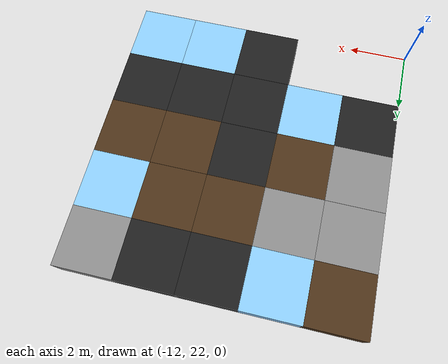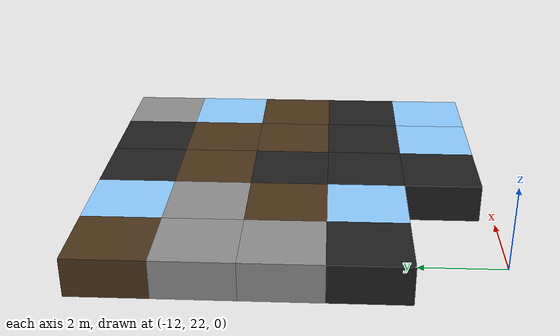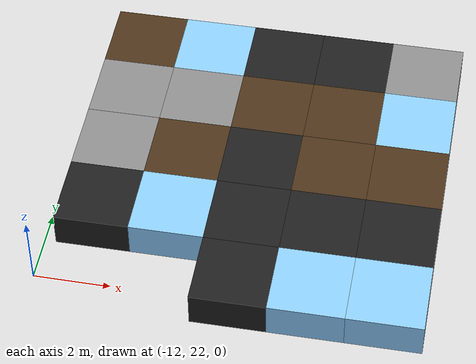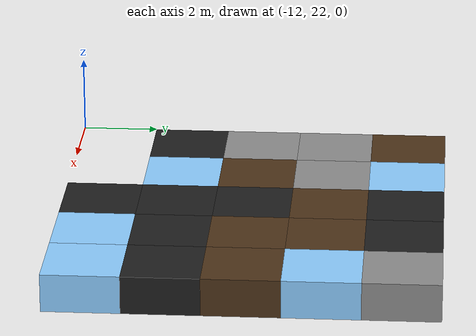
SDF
<sdf version="1.5">
 <world name="squares_example">
  <model name="tile_12_27">
   <static>true</static>
   <pose>-7.000 23.000 -0.500 0 0 0</pose>
   <link name="link">
    <collision name="col">
     <geometry><box><size>2.0 2.0 1.0</size></box></geometry>
     <surface>
      <friction>
       <ode><mu>0.4</mu><mu2>0.15</mu2><fdir1>1 0 0</fdir1><slip1>0.0</slip1><slip2>0.0</slip2></ode>
       <torsional>
        <coefficient>0.03</coefficient>
        <use_patch_radius>false</use_patch_radius>
        <surface_radius>0.12</surface_radius>
        <ode><slip>0.0</slip></ode>
       </torsional>
      </friction>
      <bounce><restitution_coefficient>0.0</restitution_coefficient><threshold>0.1</threshold></bounce>
      <contact>
       <ode><kp>1000000000.0</kp><kd>1000000.0</kd><max_vel>0.01</max_vel><min_depth>0.0</min_depth></ode>
      </contact>
     </surface>
    </collision>
    <visual name="visual">
     <geometry><box><size>2.0 2.0 1.0</size></box></geometry>
     <material>
      <diffuse>0.12 0.12 0.12 1</diffuse>
      <ambient>0 0 0 0</ambient>
      <specular>0 0 0 1</specular>
      <emissive>0 0 0 1</emissive>
     </material>
    </visual>
   </link>
  </model>
  <model name="tile_13_27">
   <static>true</static>
   <pose>-5.000 23.000 -0.500 0 0 0</pose>
   <link name="link">
    <collision name="col">
     <geometry><box><size>2.0 2.0 1.0</size></box></geometry>
     <surface>
      <friction>
       <ode><mu>0.03</mu><mu2>0.02</mu2><fdir1>1 0 0</fdir1><slip1>0.03</slip1><slip2>0.03</slip2></ode>
       <torsional>
        <coefficient>0.005</coefficient>
        <use_patch_radius>false</use_patch_radius>
        <surface_radius>0.12</surface_radius>
        <ode><slip>0.01</slip></ode>
       </torsional>
      </friction>
      <bounce><restitution_coefficient>0.0</restitution_coefficient><threshold>0.1</threshold></bounce>
      <contact>
       <ode><kp>10000000.0</kp><kd>1000.0</kd><max_vel>0.01</max_vel><min_depth>0.0</min_depth></ode>
      </contact>
     </surface>
    </collision>
    <visual name="visual">
     <geometry><box><size>2.0 2.0 1.0</size></box></geometry>
     <material>
      <diffuse>0.55 0.80 1.00 1</diffuse>
      <ambient>0 0 0 0</ambient>
      <specular>0 0 0 1</specular>
      <emissive>0 0 0 1</emissive>
     </material>
    </visual>
   </link>
  </model>
  <model name="tile_14_27">
   <static>true</static>
   <pose>-3.000 23.000 -0.500 0 0 0</pose>
   <link name="link">
    <collision name="col">
     <geometry><box><size>2.0 2.0 1.0</size></box></geometry>
     <surface>
      <friction>
       <ode><mu>0.03</mu><mu2>0.02</mu2><fdir1>1 0 0</fdir1><slip1>0.03</slip1><slip2>0.03</slip2></ode>
       <torsional>
        <coefficient>0.005</coefficient>
        <use_patch_radius>false</use_patch_radius>
        <surface_radius>0.12</surface_radius>
        <ode><slip>0.01</slip></ode>
       </torsional>
      </friction>
      <bounce><restitution_coefficient>0.0</restitution_coefficient><threshold>0.1</threshold></bounce>
      <contact>
       <ode><kp>10000000.0</kp><kd>1000.0</kd><max_vel>0.01</max_vel><min_depth>0.0</min_depth></ode>
      </contact>
     </surface>
    </collision>
    <visual name="visual">
     <geometry><box><size>2.0 2.0 1.0</size></box></geometry>
     <material>
      <diffuse>0.55 0.80 1.00 1</diffuse>
      <ambient>0 0 0 0</ambient>
      <specular>0 0 0 1</specular>
      <emissive>0 0 0 1</emissive>
     </material>
    </visual>
   </link>
  </model>
  <model name="tile_10_28">
   <static>true</static>
   <pose>-11.000 25.000 -0.500 0 0 0</pose>
   <link name="link">
    <collision name="col">
     <geometry><box><size>2.0 2.0 1.0</size></box></geometry>
     <surface>
      <friction>
       <ode><mu>0.4</mu><mu2>0.15</mu2><fdir1>1 0 0</fdir1><slip1>0.0</slip1><slip2>0.0</slip2></ode>
       <torsional>
        <coefficient>0.03</coefficient>
        <use_patch_radius>false</use_patch_radius>
        <surface_radius>0.12</surface_radius>
        <ode><slip>0.0</slip></ode>
       </torsional>
      </friction>
      <bounce><restitution_coefficient>0.0</restitution_coefficient><threshold>0.1</threshold></bounce>
      <contact>
       <ode><kp>1000000000.0</kp><kd>1000000.0</kd><max_vel>0.01</max_vel><min_depth>0.0</min_depth></ode>
      </contact>
     </surface>
    </collision>
    <visual name="visual">
     <geometry><box><size>2.0 2.0 1.0</size></box></geometry>
     <material>
      <diffuse>0.12 0.12 0.12 1</diffuse>
      <ambient>0 0 0 0</ambient>
      <specular>0 0 0 1</specular>
      <emissive>0 0 0 1</emissive>
     </material>
    </visual>
   </link>
  </model>
  <model name="tile_11_28">
   <static>true</static>
   <pose>-9.000 25.000 -0.500 0 0 0</pose>
   <link name="link">
    <collision name="col">
     <geometry><box><size>2.0 2.0 1.0</size></box></geometry>
     <surface>
      <friction>
       <ode><mu>0.03</mu><mu2>0.02</mu2><fdir1>1 0 0</fdir1><slip1>0.03</slip1><slip2>0.03</slip2></ode>
       <torsional>
        <coefficient>0.005</coefficient>
        <use_patch_radius>false</use_patch_radius>
        <surface_radius>0.12</surface_radius>
        <ode><slip>0.01</slip></ode>
       </torsional>
      </friction>
      <bounce><restitution_coefficient>0.0</restitution_coefficient><threshold>0.1</threshold></bounce>
      <contact>
       <ode><kp>10000000.0</kp><kd>1000.0</kd><max_vel>0.01</max_vel><min_depth>0.0</min_depth></ode>
      </contact>
     </surface>
    </collision>
    <visual name="visual">
     <geometry><box><size>2.0 2.0 1.0</size></box></geometry>
     <material>
      <diffuse>0.55 0.80 1.00 1</diffuse>
      <ambient>0 0 0 0</ambient>
      <specular>0 0 0 1</specular>
      <emissive>0 0 0 1</emissive>
     </material>
    </visual>
   </link>
  </model>
  <model name="tile_12_28">
   <static>true</static>
   <pose>-7.000 25.000 -0.500 0 0 0</pose>
   <link name="link">
    <collision name="col">
     <geometry><box><size>2.0 2.0 1.0</size></box></geometry>
     <surface>
      <friction>
       <ode><mu>0.4</mu><mu2>0.15</mu2><fdir1>1 0 0</fdir1><slip1>0.0</slip1><slip2>0.0</slip2></ode>
       <torsional>
        <coefficient>0.03</coefficient>
        <use_patch_radius>false</use_patch_radius>
        <surface_radius>0.12</surface_radius>
        <ode><slip>0.0</slip></ode>
       </torsional>
      </friction>
      <bounce><restitution_coefficient>0.0</restitution_coefficient><threshold>0.1</threshold></bounce>
      <contact>
       <ode><kp>1000000000.0</kp><kd>1000000.0</kd><max_vel>0.01</max_vel><min_depth>0.0</min_depth></ode>
      </contact>
     </surface>
    </collision>
    <visual name="visual">
     <geometry><box><size>2.0 2.0 1.0</size></box></geometry>
     <material>
      <diffuse>0.12 0.12 0.12 1</diffuse>
      <ambient>0 0 0 0</ambient>
      <specular>0 0 0 1</specular>
      <emissive>0 0 0 1</emissive>
     </material>
    </visual>
   </link>
  </model>
  <model name="tile_13_28">
   <static>true</static>
   <pose>-5.000 25.000 -0.500 0 0 0</pose>
   <link name="link">
    <collision name="col">
     <geometry><box><size>2.0 2.0 1.0</size></box></geometry>
     <surface>
      <friction>
       <ode><mu>0.4</mu><mu2>0.15</mu2><fdir1>1 0 0</fdir1><slip1>0.0</slip1><slip2>0.0</slip2></ode>
       <torsional>
        <coefficient>0.03</coefficient>
        <use_patch_radius>false</use_patch_radius>
        <surface_radius>0.12</surface_radius>
        <ode><slip>0.0</slip></ode>
       </torsional>
      </friction>
      <bounce><restitution_coefficient>0.0</restitution_coefficient><threshold>0.1</threshold></bounce>
      <contact>
       <ode><kp>1000000000.0</kp><kd>1000000.0</kd><max_vel>0.01</max_vel><min_depth>0.0</min_depth></ode>
      </contact>
     </surface>
    </collision>
    <visual name="visual">
     <geometry><box><size>2.0 2.0 1.0</size></box></geometry>
     <material>
      <diffuse>0.12 0.12 0.12 1</diffuse>
      <ambient>0 0 0 0</ambient>
      <specular>0 0 0 1</specular>
      <emissive>0 0 0 1</emissive>
     </material>
    </visual>
   </link>
  </model>
  <model name="tile_14_28">
   <static>true</static>
   <pose>-3.000 25.000 -0.500 0 0 0</pose>
   <link name="link">
    <collision name="col">
     <geometry><box><size>2.0 2.0 1.0</size></box></geometry>
     <surface>
      <friction>
       <ode><mu>0.4</mu><mu2>0.15</mu2><fdir1>1 0 0</fdir1><slip1>0.0</slip1><slip2>0.0</slip2></ode>
       <torsional>
        <coefficient>0.03</coefficient>
        <use_patch_radius>false</use_patch_radius>
        <surface_radius>0.12</surface_radius>
        <ode><slip>0.0</slip></ode>
       </torsional>
      </friction>
      <bounce><restitution_coefficient>0.0</restitution_coefficient><threshold>0.1</threshold></bounce>
      <contact>
       <ode><kp>1000000000.0</kp><kd>1000000.0</kd><max_vel>0.01</max_vel><min_depth>0.0</min_depth></ode>
      </contact>
     </surface>
    </collision>
    <visual name="visual">
     <geometry><box><size>2.0 2.0 1.0</size></box></geometry>
     <material>
      <diffuse>0.12 0.12 0.12 1</diffuse>
      <ambient>0 0 0 0</ambient>
      <specular>0 0 0 1</specular>
      <emissive>0 0 0 1</emissive>
     </material>
    </visual>
   </link>
  </model>
  <model name="tile_10_29">
   <static>true</static>
   <pose>-11.000 27.000 -0.500 0 0 0</pose>
   <link name="link">
    <collision name="col">
     <geometry><box><size>2.0 2.0 1.0</size></box></geometry>
     <surface>
      <friction>
       <ode><mu>0.8</mu><mu2>0.3</mu2><fdir1>1 0 0</fdir1><slip1>0.0</slip1><slip2>0.0</slip2></ode>
       <torsional>
        <coefficient>0.03</coefficient>
        <use_patch_radius>false</use_patch_radius>
        <surface_radius>0.12</surface_radius>
        <ode><slip>0.0</slip></ode>
       </torsional>
      </friction>
      <bounce><restitution_coefficient>0.0</restitution_coefficient><threshold>0.1</threshold></bounce>
      <contact>
       <ode><kp>10000000000.0</kp><kd>10000000.0</kd><max_vel>0.01</max_vel><min_depth>0.0</min_depth></ode>
      </contact>
     </surface>
    </collision>
    <visual name="visual">
     <geometry><box><size>2.0 2.0 1.0</size></box></geometry>
     <material>
      <diffuse>0.55 0.55 0.55 1</diffuse>
      <ambient>0 0 0 0</ambient>
      <specular>0 0 0 1</specular>
      <emissive>0 0 0 1</emissive>
     </material>
    </visual>
   </link>
  </model>
  <model name="tile_11_29">
   <static>true</static>
   <pose>-9.000 27.000 -0.500 0 0 0</pose>
   <link name="link">
    <collision name="col">
     <geometry><box><size>2.0 2.0 1.0</size></box></geometry>
     <surface>
      <friction>
       <ode><mu>0.6</mu><mu2>0.4</mu2><fdir1>1 0 0</fdir1><slip1>0.08</slip1><slip2>0.08</slip2></ode>
       <torsional>
        <coefficient>0.03</coefficient>
        <use_patch_radius>false</use_patch_radius>
        <surface_radius>0.12</surface_radius>
        <ode><slip>0.0</slip></ode>
       </torsional>
      </friction>
      <bounce><restitution_coefficient>0.0</restitution_coefficient><threshold>0.1</threshold></bounce>
      <contact>
       <ode><kp>1000000.0</kp><kd>10000.0</kd><max_vel>0.01</max_vel><min_depth>0.0</min_depth></ode>
      </contact>
     </surface>
    </collision>
    <visual name="visual">
     <geometry><box><size>2.0 2.0 1.0</size></box></geometry>
     <material>
      <diffuse>0.30 0.20 0.10 1</diffuse>
      <ambient>0 0 0 0</ambient>
      <specular>0 0 0 1</specular>
      <emissive>0 0 0 1</emissive>
     </material>
    </visual>
   </link>
  </model>
  <model name="tile_12_29">
   <static>true</static>
   <pose>-7.000 27.000 -0.500 0 0 0</pose>
   <link name="link">
    <collision name="col">
     <geometry><box><size>2.0 2.0 1.0</size></box></geometry>
     <surface>
      <friction>
       <ode><mu>0.4</mu><mu2>0.15</mu2><fdir1>1 0 0</fdir1><slip1>0.0</slip1><slip2>0.0</slip2></ode>
       <torsional>
        <coefficient>0.03</coefficient>
        <use_patch_radius>false</use_patch_radius>
        <surface_radius>0.12</surface_radius>
        <ode><slip>0.0</slip></ode>
       </torsional>
      </friction>
      <bounce><restitution_coefficient>0.0</restitution_coefficient><threshold>0.1</threshold></bounce>
      <contact>
       <ode><kp>1000000000.0</kp><kd>1000000.0</kd><max_vel>0.01</max_vel><min_depth>0.0</min_depth></ode>
      </contact>
     </surface>
    </collision>
    <visual name="visual">
     <geometry><box><size>2.0 2.0 1.0</size></box></geometry>
     <material>
      <diffuse>0.12 0.12 0.12 1</diffuse>
      <ambient>0 0 0 0</ambient>
      <specular>0 0 0 1</specular>
      <emissive>0 0 0 1</emissive>
     </material>
    </visual>
   </link>
  </model>
  <model name="tile_13_29">
   <static>true</static>
   <pose>-5.000 27.000 -0.500 0 0 0</pose>
   <link name="link">
    <collision name="col">
     <geometry><box><size>2.0 2.0 1.0</size></box></geometry>
     <surface>
      <friction>
       <ode><mu>0.6</mu><mu2>0.4</mu2><fdir1>1 0 0</fdir1><slip1>0.08</slip1><slip2>0.08</slip2></ode>
       <torsional>
        <coefficient>0.03</coefficient>
        <use_patch_radius>false</use_patch_radius>
        <surface_radius>0.12</surface_radius>
        <ode><slip>0.0</slip></ode>
       </torsional>
      </friction>
      <bounce><restitution_coefficient>0.0</restitution_coefficient><threshold>0.1</threshold></bounce>
      <contact>
       <ode><kp>1000000.0</kp><kd>10000.0</kd><max_vel>0.01</max_vel><min_depth>0.0</min_depth></ode>
      </contact>
     </surface>
    </collision>
    <visual name="visual">
     <geometry><box><size>2.0 2.0 1.0</size></box></geometry>
     <material>
      <diffuse>0.30 0.20 0.10 1</diffuse>
      <ambient>0 0 0 0</ambient>
      <specular>0 0 0 1</specular>
      <emissive>0 0 0 1</emissive>
     </material>
    </visual>
   </link>
  </model>
  <model name="tile_14_29">
   <static>true</static>
   <pose>-3.000 27.000 -0.500 0 0 0</pose>
   <link name="link">
    <collision name="col">
     <geometry><box><size>2.0 2.0 1.0</size></box></geometry>
     <surface>
      <friction>
       <ode><mu>0.6</mu><mu2>0.4</mu2><fdir1>1 0 0</fdir1><slip1>0.08</slip1><slip2>0.08</slip2></ode>
       <torsional>
        <coefficient>0.03</coefficient>
        <use_patch_radius>false</use_patch_radius>
        <surface_radius>0.12</surface_radius>
        <ode><slip>0.0</slip></ode>
       </torsional>
      </friction>
      <bounce><restitution_coefficient>0.0</restitution_coefficient><threshold>0.1</threshold></bounce>
      <contact>
       <ode><kp>1000000.0</kp><kd>10000.0</kd><max_vel>0.01</max_vel><min_depth>0.0</min_depth></ode>
      </contact>
     </surface>
    </collision>
    <visual name="visual">
     <geometry><box><size>2.0 2.0 1.0</size></box></geometry>
     <material>
      <diffuse>0.30 0.20 0.10 1</diffuse>
      <ambient>0 0 0 0</ambient>
      <specular>0 0 0 1</specular>
      <emissive>0 0 0 1</emissive>
     </material>
    </visual>
   </link>
  </model>
  <model name="tile_10_30">
   <static>true</static>
   <pose>-11.000 29.000 -0.500 0 0 0</pose>
   <link name="link">
    <collision name="col">
     <geometry><box><size>2.0 2.0 1.0</size></box></geometry>
     <surface>
      <friction>
       <ode><mu>0.8</mu><mu2>0.3</mu2><fdir1>1 0 0</fdir1><slip1>0.0</slip1><slip2>0.0</slip2></ode>
       <torsional>
        <coefficient>0.03</coefficient>
        <use_patch_radius>false</use_patch_radius>
        <surface_radius>0.12</surface_radius>
        <ode><slip>0.0</slip></ode>
       </torsional>
      </friction>
      <bounce><restitution_coefficient>0.0</restitution_coefficient><threshold>0.1</threshold></bounce>
      <contact>
       <ode><kp>10000000000.0</kp><kd>10000000.0</kd><max_vel>0.01</max_vel><min_depth>0.0</min_depth></ode>
      </contact>
     </surface>
    </collision>
    <visual name="visual">
     <geometry><box><size>2.0 2.0 1.0</size></box></geometry>
     <material>
      <diffuse>0.55 0.55 0.55 1</diffuse>
      <ambient>0 0 0 0</ambient>
      <specular>0 0 0 1</specular>
      <emissive>0 0 0 1</emissive>
     </material>
    </visual>
   </link>
  </model>
  <model name="tile_11_30">
   <static>true</static>
   <pose>-9.000 29.000 -0.500 0 0 0</pose>
   <link name="link">
    <collision name="col">
     <geometry><box><size>2.0 2.0 1.0</size></box></geometry>
     <surface>
      <friction>
       <ode><mu>0.8</mu><mu2>0.3</mu2><fdir1>1 0 0</fdir1><slip1>0.0</slip1><slip2>0.0</slip2></ode>
       <torsional>
        <coefficient>0.03</coefficient>
        <use_patch_radius>false</use_patch_radius>
        <surface_radius>0.12</surface_radius>
        <ode><slip>0.0</slip></ode>
       </torsional>
      </friction>
      <bounce><restitution_coefficient>0.0</restitution_coefficient><threshold>0.1</threshold></bounce>
      <contact>
       <ode><kp>10000000000.0</kp><kd>10000000.0</kd><max_vel>0.01</max_vel><min_depth>0.0</min_depth></ode>
      </contact>
     </surface>
    </collision>
    <visual name="visual">
     <geometry><box><size>2.0 2.0 1.0</size></box></geometry>
     <material>
      <diffuse>0.55 0.55 0.55 1</diffuse>
      <ambient>0 0 0 0</ambient>
      <specular>0 0 0 1</specular>
      <emissive>0 0 0 1</emissive>
     </material>
    </visual>
   </link>
  </model>
  <model name="tile_12_30">
   <static>true</static>
   <pose>-7.000 29.000 -0.500 0 0 0</pose>
   <link name="link">
    <collision name="col">
     <geometry><box><size>2.0 2.0 1.0</size></box></geometry>
     <surface>
      <friction>
       <ode><mu>0.6</mu><mu2>0.4</mu2><fdir1>1 0 0</fdir1><slip1>0.08</slip1><slip2>0.08</slip2></ode>
       <torsional>
        <coefficient>0.03</coefficient>
        <use_patch_radius>false</use_patch_radius>
        <surface_radius>0.12</surface_radius>
        <ode><slip>0.0</slip></ode>
       </torsional>
      </friction>
      <bounce><restitution_coefficient>0.0</restitution_coefficient><threshold>0.1</threshold></bounce>
      <contact>
       <ode><kp>1000000.0</kp><kd>10000.0</kd><max_vel>0.01</max_vel><min_depth>0.0</min_depth></ode>
      </contact>
     </surface>
    </collision>
    <visual name="visual">
     <geometry><box><size>2.0 2.0 1.0</size></box></geometry>
     <material>
      <diffuse>0.30 0.20 0.10 1</diffuse>
      <ambient>0 0 0 0</ambient>
      <specular>0 0 0 1</specular>
      <emissive>0 0 0 1</emissive>
     </material>
    </visual>
   </link>
  </model>
  <model name="tile_13_30">
   <static>true</static>
   <pose>-5.000 29.000 -0.500 0 0 0</pose>
   <link name="link">
    <collision name="col">
     <geometry><box><size>2.0 2.0 1.0</size></box></geometry>
     <surface>
      <friction>
       <ode><mu>0.6</mu><mu2>0.4</mu2><fdir1>1 0 0</fdir1><slip1>0.08</slip1><slip2>0.08</slip2></ode>
       <torsional>
        <coefficient>0.03</coefficient>
        <use_patch_radius>false</use_patch_radius>
        <surface_radius>0.12</surface_radius>
        <ode><slip>0.0</slip></ode>
       </torsional>
      </friction>
      <bounce><restitution_coefficient>0.0</restitution_coefficient><threshold>0.1</threshold></bounce>
      <contact>
       <ode><kp>1000000.0</kp><kd>10000.0</kd><max_vel>0.01</max_vel><min_depth>0.0</min_depth></ode>
      </contact>
     </surface>
    </collision>
    <visual name="visual">
     <geometry><box><size>2.0 2.0 1.0</size></box></geometry>
     <material>
      <diffuse>0.30 0.20 0.10 1</diffuse>
      <ambient>0 0 0 0</ambient>
      <specular>0 0 0 1</specular>
      <emissive>0 0 0 1</emissive>
     </material>
    </visual>
   </link>
  </model>
  <model name="tile_14_30">
   <static>true</static>
   <pose>-3.000 29.000 -0.500 0 0 0</pose>
   <link name="link">
    <collision name="col">
     <geometry><box><size>2.0 2.0 1.0</size></box></geometry>
     <surface>
      <friction>
       <ode><mu>0.03</mu><mu2>0.02</mu2><fdir1>1 0 0</fdir1><slip1>0.03</slip1><slip2>0.03</slip2></ode>
       <torsional>
        <coefficient>0.005</coefficient>
        <use_patch_radius>false</use_patch_radius>
        <surface_radius>0.12</surface_radius>
        <ode><slip>0.01</slip></ode>
       </torsional>
      </friction>
      <bounce><restitution_coefficient>0.0</restitution_coefficient><threshold>0.1</threshold></bounce>
      <contact>
       <ode><kp>10000000.0</kp><kd>1000.0</kd><max_vel>0.01</max_vel><min_depth>0.0</min_depth></ode>
      </contact>
     </surface>
    </collision>
    <visual name="visual">
     <geometry><box><size>2.0 2.0 1.0</size></box></geometry>
     <material>
      <diffuse>0.55 0.80 1.00 1</diffuse>
      <ambient>0 0 0 0</ambient>
      <specular>0 0 0 1</specular>
      <emissive>0 0 0 1</emissive>
     </material>
    </visual>
   </link>
  </model>
  <model name="tile_10_31">
   <static>true</static>
   <pose>-11.000 31.000 -0.500 0 0 0</pose>
   <link name="link">
    <collision name="col">
     <geometry><box><size>2.0 2.0 1.0</size></box></geometry>
     <surface>
      <friction>
       <ode><mu>0.6</mu><mu2>0.4</mu2><fdir1>1 0 0</fdir1><slip1>0.08</slip1><slip2>0.08</slip2></ode>
       <torsional>
        <coefficient>0.03</coefficient>
        <use_patch_radius>false</use_patch_radius>
        <surface_radius>0.12</surface_radius>
        <ode><slip>0.0</slip></ode>
       </torsional>
      </friction>
      <bounce><restitution_coefficient>0.0</restitution_coefficient><threshold>0.1</threshold></bounce>
      <contact>
       <ode><kp>1000000.0</kp><kd>10000.0</kd><max_vel>0.01</max_vel><min_depth>0.0</min_depth></ode>
      </contact>
     </surface>
    </collision>
    <visual name="visual">
     <geometry><box><size>2.0 2.0 1.0</size></box></geometry>
     <material>
      <diffuse>0.30 0.20 0.10 1</diffuse>
      <ambient>0 0 0 0</ambient>
      <specular>0 0 0 1</specular>
      <emissive>0 0 0 1</emissive>
     </material>
    </visual>
   </link>
  </model>
  <model name="tile_11_31">
   <static>true</static>
   <pose>-9.000 31.000 -0.500 0 0 0</pose>
   <link name="link">
    <collision name="col">
     <geometry><box><size>2.0 2.0 1.0</size></box></geometry>
     <surface>
      <friction>
       <ode><mu>0.03</mu><mu2>0.02</mu2><fdir1>1 0 0</fdir1><slip1>0.03</slip1><slip2>0.03</slip2></ode>
       <torsional>
        <coefficient>0.005</coefficient>
        <use_patch_radius>false</use_patch_radius>
        <surface_radius>0.12</surface_radius>
        <ode><slip>0.01</slip></ode>
       </torsional>
      </friction>
      <bounce><restitution_coefficient>0.0</restitution_coefficient><threshold>0.1</threshold></bounce>
      <contact>
       <ode><kp>10000000.0</kp><kd>1000.0</kd><max_vel>0.01</max_vel><min_depth>0.0</min_depth></ode>
      </contact>
     </surface>
    </collision>
    <visual name="visual">
     <geometry><box><size>2.0 2.0 1.0</size></box></geometry>
     <material>
      <diffuse>0.55 0.80 1.00 1</diffuse>
      <ambient>0 0 0 0</ambient>
      <specular>0 0 0 1</specular>
      <emissive>0 0 0 1</emissive>
     </material>
    </visual>
   </link>
  </model>
  <model name="tile_12_31">
   <static>true</static>
   <pose>-7.000 31.000 -0.500 0 0 0</pose>
   <link name="link">
    <collision name="col">
     <geometry><box><size>2.0 2.0 1.0</size></box></geometry>
     <surface>
      <friction>
       <ode><mu>0.4</mu><mu2>0.15</mu2><fdir1>1 0 0</fdir1><slip1>0.0</slip1><slip2>0.0</slip2></ode>
       <torsional>
        <coefficient>0.03</coefficient>
        <use_patch_radius>false</use_patch_radius>
        <surface_radius>0.12</surface_radius>
        <ode><slip>0.0</slip></ode>
       </torsional>
      </friction>
      <bounce><restitution_coefficient>0.0</restitution_coefficient><threshold>0.1</threshold></bounce>
      <contact>
       <ode><kp>1000000000.0</kp><kd>1000000.0</kd><max_vel>0.01</max_vel><min_depth>0.0</min_depth></ode>
      </contact>
     </surface>
    </collision>
    <visual name="visual">
     <geometry><box><size>2.0 2.0 1.0</size></box></geometry>
     <material>
      <diffuse>0.12 0.12 0.12 1</diffuse>
      <ambient>0 0 0 0</ambient>
      <specular>0 0 0 1</specular>
      <emissive>0 0 0 1</emissive>
     </material>
    </visual>
   </link>
  </model>
  <model name="tile_13_31">
   <static>true</static>
   <pose>-5.000 31.000 -0.500 0 0 0</pose>
   <link name="link">
    <collision name="col">
     <geometry><box><size>2.0 2.0 1.0</size></box></geometry>
     <surface>
      <friction>
       <ode><mu>0.4</mu><mu2>0.15</mu2><fdir1>1 0 0</fdir1><slip1>0.0</slip1><slip2>0.0</slip2></ode>
       <torsional>
        <coefficient>0.03</coefficient>
        <use_patch_radius>false</use_patch_radius>
        <surface_radius>0.12</surface_radius>
        <ode><slip>0.0</slip></ode>
       </torsional>
      </friction>
      <bounce><restitution_coefficient>0.0</restitution_coefficient><threshold>0.1</threshold></bounce>
      <contact>
       <ode><kp>1000000000.0</kp><kd>1000000.0</kd><max_vel>0.01</max_vel><min_depth>0.0</min_depth></ode>
      </contact>
     </surface>
    </collision>
    <visual name="visual">
     <geometry><box><size>2.0 2.0 1.0</size></box></geometry>
     <material>
      <diffuse>0.12 0.12 0.12 1</diffuse>
      <ambient>0 0 0 0</ambient>
      <specular>0 0 0 1</specular>
      <emissive>0 0 0 1</emissive>
     </material>
    </visual>
   </link>
  </model>
  <model name="tile_14_31">
   <static>true</static>
   <pose>-3.000 31.000 -0.500 0 0 0</pose>
   <link name="link">
    <collision name="col">
     <geometry><box><size>2.0 2.0 1.0</size></box></geometry>
     <surface>
      <friction>
       <ode><mu>0.8</mu><mu2>0.3</mu2><fdir1>1 0 0</fdir1><slip1>0.0</slip1><slip2>0.0</slip2></ode>
       <torsional>
        <coefficient>0.03</coefficient>
        <use_patch_radius>false</use_patch_radius>
        <surface_radius>0.12</surface_radius>
        <ode><slip>0.0</slip></ode>
       </torsional>
      </friction>
      <bounce><restitution_coefficient>0.0</restitution_coefficient><threshold>0.1</threshold></bounce>
      <contact>
       <ode><kp>10000000000.0</kp><kd>10000000.0</kd><max_vel>0.01</max_vel><min_depth>0.0</min_depth></ode>
      </contact>
     </surface>
    </collision>
    <visual name="visual">
     <geometry><box><size>2.0 2.0 1.0</size></box></geometry>
     <material>
      <diffuse>0.55 0.55 0.55 1</diffuse>
      <ambient>0 0 0 0</ambient>
      <specular>0 0 0 1</specular>
      <emissive>0 0 0 1</emissive>
     </material>
    </visual>
   </link>
  </model>
 </world>
</sdf>
